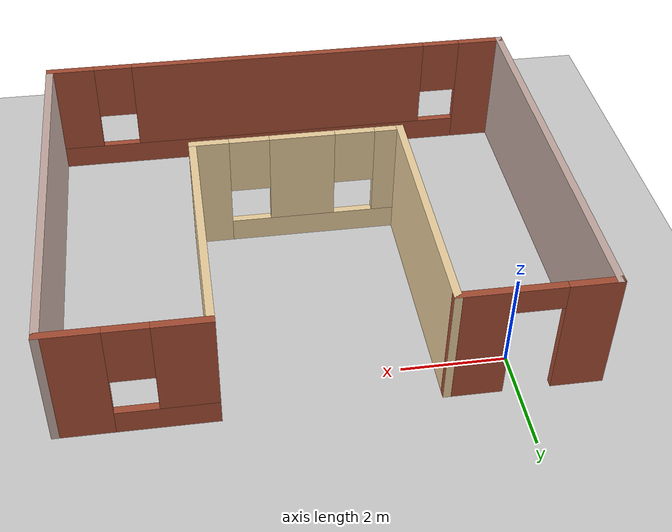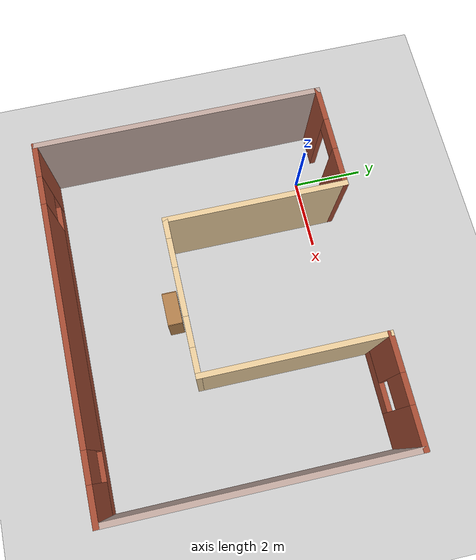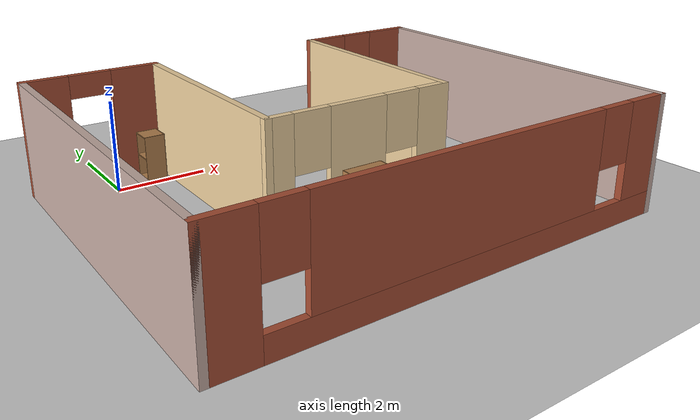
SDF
<sdf version="1.6">
 <world name="default">
  <light name="sun" type="directional">
   <pose>0 0 10 0 -0 0</pose>
   <diffuse>0.8 0.8 0.8 1</diffuse>
   <specular>0.1 0.1 0.1 1</specular>
   <attenuation>
    <range>1000</range>
    <constant>0.9</constant>
    <linear>0.01</linear>
    <quadratic>0.001</quadratic>
   </attenuation>
   <direction>-0.5 0.5 -1</direction>
  </light>
  <model name="ground_plane">
   <static>1</static>
   <link name="link">
    <collision name="collision">
     <geometry><plane><normal>0 0 1</normal><size>100 100</size></plane></geometry>
     <surface><friction><ode><mu>100</mu><mu2>50</mu2></ode></friction></surface>
    </collision>
    <visual name="visual">
     <cast_shadows>0</cast_shadows>
     <geometry><plane><normal>0 0 1</normal><size>100 100</size></plane></geometry>
     <material>
      <script><uri>file://media/materials/scripts/gazebo.material</uri><name>Gazebo/Grey</name></script>
     </material>
    </visual>
   </link>
  </model>
  <gravity>0 0 -9.8</gravity>
  <magnetic_field>6e-06 2.3e-05 -4.2e-05</magnetic_field>
  <atmosphere type="adiabatic"/>
  <physics name="default_physics" default="0" type="ode">
   <max_step_size>0.001</max_step_size>
   <real_time_factor>1</real_time_factor>
   <real_time_update_rate>1000</real_time_update_rate>
  </physics>
  <scene><ambient>0.4 0.4 0.4 1</ambient><background>0.7 0.7 0.7 1</background><shadows>1</shadows></scene>
  <spherical_coordinates>
   <surface_model>EARTH_WGS84</surface_model>
   <latitude_deg>0</latitude_deg>
   <longitude_deg>0</longitude_deg>
   <elevation>0</elevation>
   <heading_deg>0</heading_deg>
  </spherical_coordinates>
  <model name="c_world">
   <pose>3.3837 -3.24072 0 0 -0 0</pose>
   <link name="Wall_32">
    <pose>0 -3.925 0 0 -0 0</pose>
    <visual name="Wall_32_Visual_0">
     <pose>-4.49849 0 1.25 0 -0 0</pose>
     <geometry><box><size>1.00301 0.15 2.5</size></box></geometry>
     <material>
      <script><uri>file://media/materials/scripts/gazebo.material</uri><name>Gazebo/Bricks</name></script>
      <ambient>1 1 1 1</ambient>
     </material>
    </visual>
    <collision name="Wall_32_Collision_0">
     <geometry><box><size>1.00301 0.15 2.5</size></box></geometry>
     <pose>-4.49849 0 1.25 0 -0 0</pose>
    </collision>
    <visual name="Wall_32_Visual_1">
     <pose>0.501507 0 0.25 0 -0 0</pose>
     <geometry><box><size>8.99699 0.15 0.5</size></box></geometry>
     <material>
      <script><uri>file://media/materials/scripts/gazebo.material</uri><name>Gazebo/Bricks</name></script>
      <ambient>1 1 1 1</ambient>
     </material>
    </visual>
    <collision name="Wall_32_Collision_1">
     <geometry><box><size>8.99699 0.15 0.5</size></box></geometry>
     <pose>0.501507 0 0.25 0 -0 0</pose>
    </collision>
    <visual name="Wall_32_Visual_2">
     <pose>-0.002914 0 1.5 0 -0 0</pose>
     <geometry><box><size>6.38814 0.15 2</size></box></geometry>
     <material>
      <script><uri>file://media/materials/scripts/gazebo.material</uri><name>Gazebo/Bricks</name></script>
      <ambient>1 1 1 1</ambient>
     </material>
    </visual>
    <collision name="Wall_32_Collision_2">
     <geometry><box><size>6.38814 0.15 2</size></box></geometry>
     <pose>-0.002914 0 1.5 0 -0 0</pose>
    </collision>
    <visual name="Wall_32_Visual_3">
     <pose>4.49558 0 1.5 0 -0 0</pose>
     <geometry><box><size>1.00884 0.15 2</size></box></geometry>
     <material>
      <script><uri>file://media/materials/scripts/gazebo.material</uri><name>Gazebo/Bricks</name></script>
      <ambient>1 1 1 1</ambient>
     </material>
    </visual>
    <collision name="Wall_32_Collision_3">
     <geometry><box><size>1.00884 0.15 2</size></box></geometry>
     <pose>4.49558 0 1.5 0 -0 0</pose>
    </collision>
    <visual name="Wall_32_Visual_4">
     <pose>-3.59699 0 1.9 0 -0 0</pose>
     <geometry><box><size>0.8 0.15 1.2</size></box></geometry>
     <material>
      <script><uri>file://media/materials/scripts/gazebo.material</uri><name>Gazebo/Bricks</name></script>
      <ambient>1 1 1 1</ambient>
     </material>
    </visual>
    <collision name="Wall_32_Collision_4">
     <geometry><box><size>0.8 0.15 1.2</size></box></geometry>
     <pose>-3.59699 0 1.9 0 -0 0</pose>
    </collision>
    <visual name="Wall_32_Visual_5">
     <pose>3.59116 0 1.9 0 -0 0</pose>
     <geometry><box><size>0.8 0.15 1.2</size></box></geometry>
     <material>
      <script><uri>file://media/materials/scripts/gazebo.material</uri><name>Gazebo/Bricks</name></script>
      <ambient>1 1 1 1</ambient>
     </material>
    </visual>
    <collision name="Wall_32_Collision_5">
     <geometry><box><size>0.8 0.15 1.2</size></box></geometry>
     <pose>3.59116 0 1.9 0 -0 0</pose>
    </collision>
   </link>
   <link name="Wall_38">
    <pose>3.5 3.925 0 0 -0 3.14159</pose>
    <visual name="Wall_38_Visual_0">
     <pose>-0.932339 0 1.25 0 -0 0</pose>
     <geometry><box><size>1.13532 0.15 2.5</size></box></geometry>
     <material>
      <script><uri>file://media/materials/scripts/gazebo.material</uri><name>Gazebo/Bricks</name></script>
      <ambient>0.921569 0.807843 0.615686 1</ambient>
     </material>
    </visual>
    <collision name="Wall_38_Collision_0">
     <geometry><box><size>1.13532 0.15 2.5</size></box></geometry>
     <pose>-0.932339 0 1.25 0 -0 0</pose>
    </collision>
    <visual name="Wall_38_Visual_1">
     <pose>0.567661 0 0.25 0 -0 0</pose>
     <geometry><box><size>1.86468 0.15 0.5</size></box></geometry>
     <material>
      <script><uri>file://media/materials/scripts/gazebo.material</uri><name>Gazebo/Bricks</name></script>
      <ambient>0.921569 0.807843 0.615686 1</ambient>
     </material>
    </visual>
    <collision name="Wall_38_Collision_1">
     <geometry><box><size>1.86468 0.15 0.5</size></box></geometry>
     <pose>0.567661 0 0.25 0 -0 0</pose>
    </collision>
    <visual name="Wall_38_Visual_2">
     <pose>0.967661 0 1.5 0 -0 0</pose>
     <geometry><box><size>1.06468 0.15 2</size></box></geometry>
     <material>
      <script><uri>file://media/materials/scripts/gazebo.material</uri><name>Gazebo/Bricks</name></script>
      <ambient>0.921569 0.807843 0.615686 1</ambient>
     </material>
    </visual>
    <collision name="Wall_38_Collision_2">
     <geometry><box><size>1.06468 0.15 2</size></box></geometry>
     <pose>0.967661 0 1.5 0 -0 0</pose>
    </collision>
    <visual name="Wall_38_Visual_3">
     <pose>0.035321 0 1.9 0 -0 0</pose>
     <geometry><box><size>0.8 0.15 1.2</size></box></geometry>
     <material>
      <script><uri>file://media/materials/scripts/gazebo.material</uri><name>Gazebo/Bricks</name></script>
      <ambient>0.921569 0.807843 0.615686 1</ambient>
     </material>
    </visual>
    <collision name="Wall_38_Collision_3">
     <geometry><box><size>0.8 0.15 1.2</size></box></geometry>
     <pose>0.035321 0 1.9 0 -0 0</pose>
    </collision>
   </link>
   <link name="Wall_39">
    <collision name="Wall_39_Collision">
     <geometry><box><size>5 0.15 2.5</size></box></geometry>
     <pose>0 0 1.25 0 -0 0</pose>
    </collision>
    <visual name="Wall_39_Visual">
     <pose>0 0 1.25 0 -0 0</pose>
     <geometry><box><size>5 0.15 2.5</size></box></geometry>
     <material>
      <script><uri>file://media/materials/scripts/gazebo.material</uri><name>Gazebo/Grey</name></script>
      <ambient>0.921569 0.807843 0.615686 1</ambient>
     </material>
    </visual>
    <pose>2.075 1.5 0 0 0 -1.5708</pose>
   </link>
   <link name="Wall_41">
    <collision name="Wall_41_Collision">
     <geometry><box><size>5 0.15 2.5</size></box></geometry>
     <pose>0 0 1.25 0 -0 0</pose>
    </collision>
    <visual name="Wall_41_Visual">
     <pose>0 0 1.25 0 -0 0</pose>
     <geometry><box><size>5 0.15 2.5</size></box></geometry>
     <material>
      <script><uri>file://media/materials/scripts/gazebo.material</uri><name>Gazebo/Grey</name></script>
      <ambient>0.921569 0.807843 0.615686 1</ambient>
     </material>
    </visual>
    <pose>-2.075 1.5 0 0 -0 1.5708</pose>
   </link>
   <link name="Wall_42">
    <pose>-3.5 3.925 0 0 -0 3.14159</pose>
    <visual name="Wall_42_Visual_0">
     <pose>-0.947587 0 1.25 0 -0 0</pose>
     <geometry><box><size>1.10483 0.15 2.5</size></box></geometry>
     <material>
      <script><uri>file://media/materials/scripts/gazebo.material</uri><name>Gazebo/Bricks</name></script>
      <ambient>0.921569 0.807843 0.615686 1</ambient>
     </material>
    </visual>
    <collision name="Wall_42_Collision_0">
     <geometry><box><size>1.10483 0.15 2.5</size></box></geometry>
     <pose>-0.947587 0 1.25 0 -0 0</pose>
    </collision>
    <visual name="Wall_42_Visual_1">
     <pose>1.00241 0 1.25 0 -0 0</pose>
     <geometry><box><size>0.995173 0.15 2.5</size></box></geometry>
     <material>
      <script><uri>file://media/materials/scripts/gazebo.material</uri><name>Gazebo/Bricks</name></script>
      <ambient>0.921569 0.807843 0.615686 1</ambient>
     </material>
    </visual>
    <collision name="Wall_42_Collision_1">
     <geometry><box><size>0.995173 0.15 2.5</size></box></geometry>
     <pose>1.00241 0 1.25 0 -0 0</pose>
    </collision>
    <visual name="Wall_42_Visual_2">
     <pose>0.054827 0 2.25 0 -0 0</pose>
     <geometry><box><size>0.9 0.15 0.5</size></box></geometry>
     <material>
      <script><uri>file://media/materials/scripts/gazebo.material</uri><name>Gazebo/Bricks</name></script>
      <ambient>0.921569 0.807843 0.615686 1</ambient>
     </material>
    </visual>
    <collision name="Wall_42_Collision_2">
     <geometry><box><size>0.9 0.15 0.5</size></box></geometry>
     <pose>0.054827 0 2.25 0 -0 0</pose>
    </collision>
   </link>
   <link name="Wall_44">
    <pose>0 -0.925 0 0 -0 3.14159</pose>
    <visual name="Wall_44_Visual_0">
     <pose>-1.7531 0 1.25 0 -0 0</pose>
     <geometry><box><size>0.793793 0.15 2.5</size></box></geometry>
     <material>
      <script><uri>file://media/materials/scripts/gazebo.material</uri><name>Gazebo/Grey</name></script>
      <ambient>0.921569 0.807843 0.615686 1</ambient>
     </material>
    </visual>
    <collision name="Wall_44_Collision_0">
     <geometry><box><size>0.793793 0.15 2.5</size></box></geometry>
     <pose>-1.7531 0 1.25 0 -0 0</pose>
    </collision>
    <visual name="Wall_44_Visual_1">
     <pose>0.396896 0 0.25 0 -0 0</pose>
     <geometry><box><size>3.50621 0.15 0.5</size></box></geometry>
     <material>
      <script><uri>file://media/materials/scripts/gazebo.material</uri><name>Gazebo/Grey</name></script>
      <ambient>0.921569 0.807843 0.615686 1</ambient>
     </material>
    </visual>
    <collision name="Wall_44_Collision_1">
     <geometry><box><size>3.50621 0.15 0.5</size></box></geometry>
     <pose>0.396896 0 0.25 0 -0 0</pose>
    </collision>
    <visual name="Wall_44_Visual_2">
     <pose>0.097773 0 1.5 0 -0 0</pose>
     <geometry><box><size>1.30796 0.15 2</size></box></geometry>
     <material>
      <script><uri>file://media/materials/scripts/gazebo.material</uri><name>Gazebo/Grey</name></script>
      <ambient>0.921569 0.807843 0.615686 1</ambient>
     </material>
    </visual>
    <collision name="Wall_44_Collision_2">
     <geometry><box><size>1.30796 0.15 2</size></box></geometry>
     <pose>0.097773 0 1.5 0 -0 0</pose>
    </collision>
    <visual name="Wall_44_Visual_3">
     <pose>1.85088 0 1.5 0 -0 0</pose>
     <geometry><box><size>0.598248 0.15 2</size></box></geometry>
     <material>
      <script><uri>file://media/materials/scripts/gazebo.material</uri><name>Gazebo/Grey</name></script>
      <ambient>0.921569 0.807843 0.615686 1</ambient>
     </material>
    </visual>
    <collision name="Wall_44_Collision_3">
     <geometry><box><size>0.598248 0.15 2</size></box></geometry>
     <pose>1.85088 0 1.5 0 -0 0</pose>
    </collision>
    <visual name="Wall_44_Visual_4">
     <pose>-0.956207 0 1.9 0 -0 0</pose>
     <geometry><box><size>0.8 0.15 1.2</size></box></geometry>
     <material>
      <script><uri>file://media/materials/scripts/gazebo.material</uri><name>Gazebo/Grey</name></script>
      <ambient>0.921569 0.807843 0.615686 1</ambient>
     </material>
    </visual>
    <collision name="Wall_44_Collision_4">
     <geometry><box><size>0.8 0.15 1.2</size></box></geometry>
     <pose>-0.956207 0 1.9 0 -0 0</pose>
    </collision>
    <visual name="Wall_44_Visual_5">
     <pose>1.15175 0 1.9 0 -0 0</pose>
     <geometry><box><size>0.8 0.15 1.2</size></box></geometry>
     <material>
      <script><uri>file://media/materials/scripts/gazebo.material</uri><name>Gazebo/Grey</name></script>
      <ambient>0.921569 0.807843 0.615686 1</ambient>
     </material>
    </visual>
    <collision name="Wall_44_Collision_5">
     <geometry><box><size>0.8 0.15 1.2</size></box></geometry>
     <pose>1.15175 0 1.9 0 -0 0</pose>
    </collision>
   </link>
   <link name="Wall_46">
    <collision name="Wall_46_Collision">
     <geometry><box><size>8 0.15 2.5</size></box></geometry>
     <pose>0 0 1.25 0 -0 0</pose>
    </collision>
    <visual name="Wall_46_Visual">
     <pose>0 0 1.25 0 -0 0</pose>
     <geometry><box><size>8 0.15 2.5</size></box></geometry>
     <material>
      <script><uri>file://media/materials/scripts/gazebo.material</uri><name>Gazebo/Grey</name></script>
      <ambient>0.760784 0.662745 0.627451 1</ambient>
     </material>
    </visual>
    <pose>-4.925 0 0 0 0 -1.5708</pose>
   </link>
   <link name="Wall_48">
    <collision name="Wall_48_Collision">
     <geometry><box><size>8 0.15 2.5</size></box></geometry>
     <pose>0 0 1.25 0 -0 0</pose>
    </collision>
    <visual name="Wall_48_Visual">
     <pose>0 0 1.25 0 -0 0</pose>
     <geometry><box><size>8 0.15 2.5</size></box></geometry>
     <material>
      <script><uri>file://media/materials/scripts/gazebo.material</uri><name>Gazebo/Grey</name></script>
      <ambient>0.760784 0.662745 0.627451 1</ambient>
     </material>
    </visual>
    <pose>4.925 0 0 0 0 -1.5708</pose>
   </link>
   <static>1</static>
  </model>
  <plugin name="collision_map_creator" filename="libcollision_map_creator.so"/>
  <model name="cabinet">
   <static>1</static>
   <link name="cabinet_bottom_plate">
    <inertial>
     <pose>0 0 -1 0 -0 0</pose>
     <inertia><ixx>2.05</ixx><ixy>0</ixy><ixz>0</ixz><iyy>2.05</iyy><iyz>0</iyz><izz>2.05</izz></inertia>
     <mass>25</mass>
    </inertial>
    <collision name="cabinet_bottom_plate_geom">
     <pose>0 0 0.01 0 -0 0</pose>
     <geometry><box><size>0.45 0.45 0.02</size></box></geometry>
    </collision>
    <visual name="cabinet_bottom_plate_geom_visual">
     <pose>0 0 0.01 0 -0 0</pose>
     <geometry><box><size>0.45 0.45 0.02</size></box></geometry>
     <material>
      <script><uri>file://media/materials/scripts/gazebo.material</uri><name>Gazebo/Wood</name></script>
     </material>
    </visual>
    <collision name="cabinet_bottom_plate_geom_cabinet_back_plate">
     <pose>0.235 0 0.51 0 -0 0</pose>
     <geometry><box><size>0.02 0.45 1.02</size></box></geometry>
    </collision>
    <visual name="cabinet_bottom_plate_geom_cabinet_back_plate_visual">
     <pose>0.235 0 0.51 0 -0 0</pose>
     <geometry><box><size>0.02 0.45 1.02</size></box></geometry>
     <material>
      <script><uri>file://media/materials/scripts/gazebo.material</uri><name>Gazebo/Wood</name></script>
     </material>
    </visual>
    <collision name="cabinet_bottom_plate_geom_cabinet_left_plate">
     <pose>0 0.235 0.51 0 -0 0</pose>
     <geometry><box><size>0.45 0.02 1.02</size></box></geometry>
    </collision>
    <visual name="cabinet_bottom_plate_geom_cabinet_left_plate_visual">
     <pose>0 0.235 0.51 0 -0 0</pose>
     <geometry><box><size>0.45 0.02 1.02</size></box></geometry>
     <material>
      <script><uri>file://media/materials/scripts/gazebo.material</uri><name>Gazebo/Wood</name></script>
     </material>
    </visual>
    <collision name="cabinet_bottom_plate_geom_cabinet_middle_plate">
     <pose>0 0 0.51 0 -0 0</pose>
     <geometry><box><size>0.45 0.45 0.02</size></box></geometry>
    </collision>
    <visual name="cabinet_bottom_plate_geom_cabinet_middle_plate_visual">
     <pose>0 0 0.51 0 -0 0</pose>
     <geometry><box><size>0.45 0.45 0.02</size></box></geometry>
     <material>
      <script><uri>file://media/materials/scripts/gazebo.material</uri><name>Gazebo/Wood</name></script>
     </material>
    </visual>
    <collision name="cabinet_bottom_plate_geom_cabinet_right_plate">
     <pose>0 -0.235 0.51 0 -0 0</pose>
     <geometry><box><size>0.45 0.02 1.02</size></box></geometry>
    </collision>
    <visual name="cabinet_bottom_plate_geom_cabinet_right_plate_visual">
     <pose>0 -0.235 0.51 0 -0 0</pose>
     <geometry><box><size>0.45 0.02 1.02</size></box></geometry>
     <material>
      <script><uri>file://media/materials/scripts/gazebo.material</uri><name>Gazebo/Wood</name></script>
     </material>
    </visual>
    <collision name="cabinet_bottom_plate_geom_cabinet_top_plate">
     <pose>0 0 1.01 0 -0 0</pose>
     <geometry><box><size>0.45 0.45 0.02</size></box></geometry>
    </collision>
    <visual name="cabinet_bottom_plate_geom_cabinet_top_plate_visual">
     <pose>0 0 1.01 0 -0 0</pose>
     <geometry><box><size>0.45 0.45 0.02</size></box></geometry>
     <material>
      <script><uri>file://media/materials/scripts/gazebo.material</uri><name>Gazebo/Wood</name></script>
     </material>
    </visual>
   </link>
   <pose>0.941746 0.365453 0 0 -0 0</pose>
  </model>
  <model name="bookshelf">
   <static>1</static>
   <link name="link">
    <inertial><mass>1</mass></inertial>
    <collision name="back">
     <pose>0 0.005 0.6 0 -0 0</pose>
     <geometry><box><size>0.9 0.01 1.2</size></box></geometry>
    </collision>
    <visual name="visual1">
     <pose>0 0.005 0.6 0 -0 0</pose>
     <geometry><box><size>0.9 0.01 1.2</size></box></geometry>
     <material>
      <script><uri>file://media/materials/scripts/gazebo.material</uri><name>Gazebo/Wood</name></script>
     </material>
    </visual>
    <collision name="left_side">
     <pose>0.45 -0.195 0.6 0 -0 0</pose>
     <geometry><box><size>0.02 0.4 1.2</size></box></geometry>
    </collision>
    <visual name="visual2">
     <pose>0.45 -0.195 0.6 0 -0 0</pose>
     <geometry><box><size>0.02 0.4 1.2</size></box></geometry>
     <material>
      <script><uri>file://media/materials/scripts/gazebo.material</uri><name>Gazebo/Wood</name></script>
     </material>
    </visual>
    <collision name="right_side">
     <pose>-0.45 -0.195 0.6 0 -0 0</pose>
     <geometry><box><size>0.02 0.4 1.2</size></box></geometry>
    </collision>
    <visual name="visual3">
     <pose>-0.45 -0.195 0.6 0 -0 0</pose>
     <geometry><box><size>0.02 0.4 1.2</size></box></geometry>
     <material>
      <script><uri>file://media/materials/scripts/gazebo.material</uri><name>Gazebo/Wood</name></script>
     </material>
    </visual>
    <collision name="bottom">
     <pose>0 -0.195 0.03 0 -0 0</pose>
     <geometry><box><size>0.88 0.4 0.06</size></box></geometry>
    </collision>
    <visual name="visual4">
     <pose>0 -0.195 0.03 0 -0 0</pose>
     <geometry><box><size>0.88 0.4 0.06</size></box></geometry>
     <material>
      <script><uri>file://media/materials/scripts/gazebo.material</uri><name>Gazebo/Wood</name></script>
     </material>
    </visual>
    <collision name="top">
     <pose>0 -0.195 1.19 0 -0 0</pose>
     <geometry><box><size>0.88 0.4 0.02</size></box></geometry>
    </collision>
    <visual name="visual5">
     <pose>0 -0.195 1.19 0 -0 0</pose>
     <geometry><box><size>0.88 0.4 0.02</size></box></geometry>
     <material>
      <script><uri>file://media/materials/scripts/gazebo.material</uri><name>Gazebo/Wood</name></script>
     </material>
    </visual>
    <collision name="low_shelf">
     <pose>0 -0.195 0.43 0 -0 0</pose>
     <geometry><box><size>0.88 0.4 0.02</size></box></geometry>
    </collision>
    <visual name="visual6">
     <pose>0 -0.195 0.43 0 -0 0</pose>
     <geometry><box><size>0.88 0.4 0.02</size></box></geometry>
     <material>
      <script><uri>file://media/materials/scripts/gazebo.material</uri><name>Gazebo/Wood</name></script>
     </material>
    </visual>
    <collision name="high_shelf">
     <pose>0 -0.195 0.8 0 -0 0</pose>
     <geometry><box><size>0.88 0.4 0.02</size></box></geometry>
    </collision>
    <visual name="visual7">
     <pose>0 -0.195 0.8 0 -0 0</pose>
     <geometry><box><size>0.88 0.4 0.02</size></box></geometry>
     <material>
      <script><uri>file://media/materials/scripts/gazebo.material</uri><name>Gazebo/Wood</name></script>
     </material>
    </visual>
   </link>
   <pose>3.32468 -4.28542 0 0 -0 0</pose>
  </model>
 </world>
</sdf>
